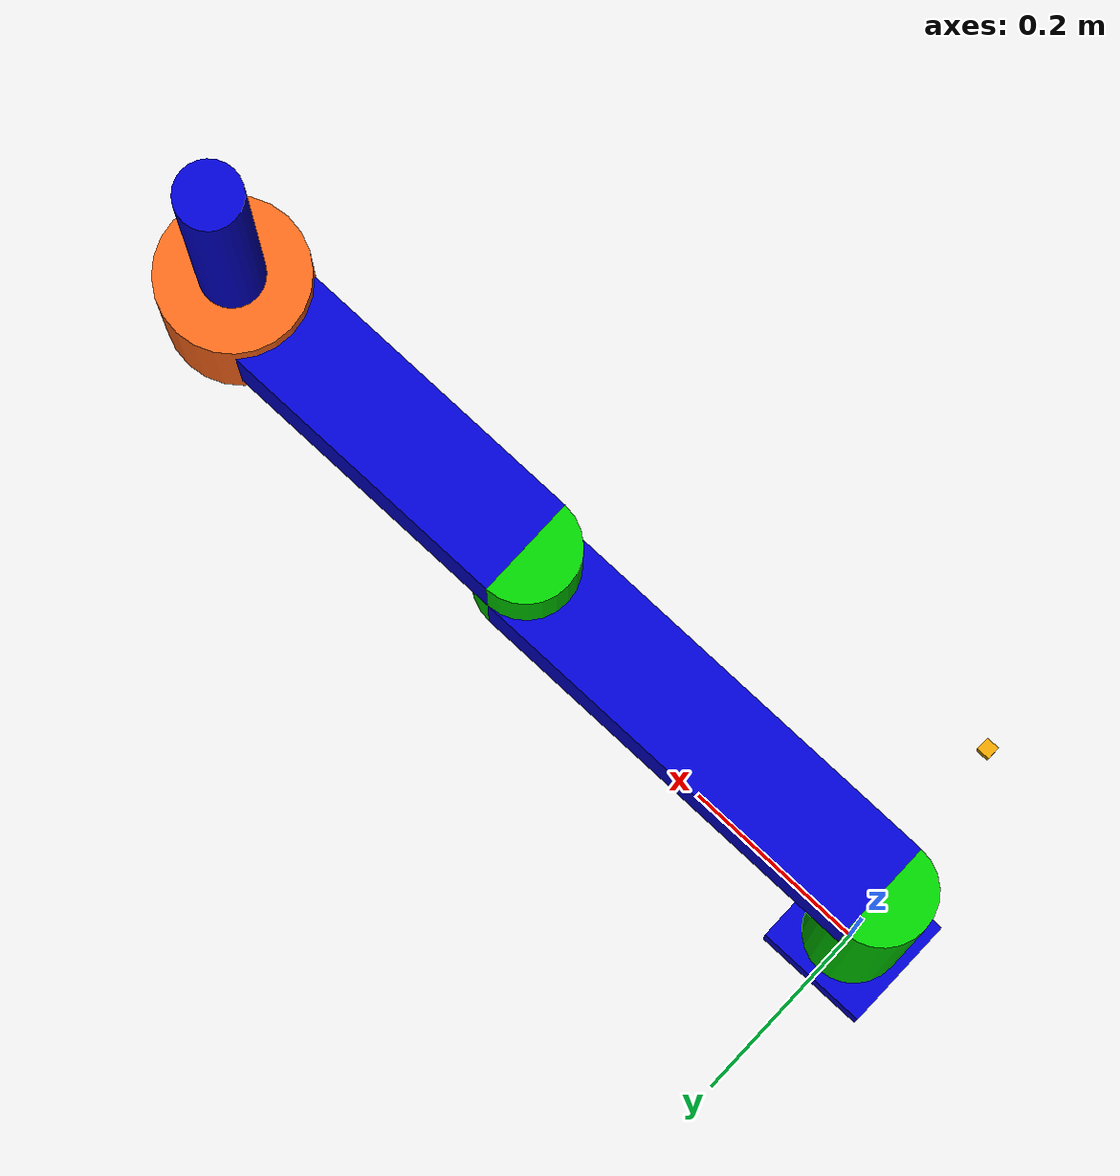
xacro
<?xml version = "1.0"?>
<robot name = "scara" xmlns:xacro="http://www.ros.org/wiki/xacro">

  <!-- Robot arm dimension -->
  <xacro:property name="PI" value="3.1415926535897931"/>

  <material name="black">
    <color rgba="0.0 0.0 0.0 1.0"/>
  </material>

  <material name="blue">
    <color rgba="0.0 0.0 0.8 1.0"/>
  </material>

  <material name="green">
    <color rgba="0.0 0.8 0.0 1.0"/>
  </material>

  <material name="orange">
    <color rgba="1 0.4 0.1 1.0"/>
  </material>

  <material name="brown">
    <color rgba="1 0.87 0.84 1.0"/>
  </material>

  <material name="grey">
    <color rgba="0.2 0.2 0.2 1.0"/>
  </material>

  <material name="red">
    <color rgba="0.8 0.0 0.0 1.0"/>
  </material>

  <material name="white">
    <color rgba="1.0 1.0 1.0 1.0"/>
  </material>

  <!-- For gazebo colors -->
  <gazebo reference="base_link">
    <material>Gazebo/Black</material>
  </gazebo>
  <gazebo reference="revolute1">
    <material>Gazebo/Red</material>
  </gazebo>
  <gazebo reference="link1">
    <material>Gazebo/Black</material>
  </gazebo>
  <gazebo reference="revolute2">
    <material>Gazebo/Red</material>
  </gazebo>
  <gazebo reference="link2">
    <material>Gazebo/Black</material>
  </gazebo>
  <gazebo reference="prismatic3">
    <material>Gazebo/Blue</material>
  </gazebo>
  <gazebo reference="link3">
    <material>Gazebo/Black</material>
  </gazebo>

  <!-- Used for fixing robot to Gazebo 'base_link' -->
  <link name="world"/>

  <!-- Base Link -->
  <link name = "base_link">
    <visual>
      <geometry>
        <box size = "0.12 0.12 0.05"/>
      </geometry>
      <material name = "blue"/>
      <origin xyz = "0 0 0.025"/>
    </visual>
    <inertial>
      <mass value="1" />
      <origin xyz="0 0 0.0" rpy="0 0 0" />
      <inertia ixx="0.001" ixy="0" ixz="0" iyy="0.001" iyz="0" izz="0.001" />
    </inertial>
    <collision>
      <geometry>
        <box size = "0.12 0.12 0.05"/>
      </geometry>
      <material name = "blue"/>
      <origin xyz = "0 0 0.025"/>
    </collision>
  </link>

  <joint name="base2world" type="fixed">
    <parent link="world"/>
    <child link="base_link"/>
  </joint>

  <!-- revolute1 1 -->
  <link name = "revolute1">
    <visual>
      <geometry>
        <cylinder length = "0.45" radius = "0.05"/>
      </geometry>
      <material name = "green"/>
      <origin xyz = "0 0 0.225"/>
    </visual>
    <inertial>
      <mass value="0.5" />
      <origin xyz="0 0 0.0" rpy="0 0 0" />
      <inertia ixx="0.001" ixy="0" ixz="0" iyy="0.001" iyz="0" izz="0.001" />
    </inertial>
    <collision>
      <geometry>
        <cylinder length = "0.45" radius = "0.05"/>
      </geometry>
      <material name = "green"/>
      <origin xyz = "0 0 0.225"/>
    </collision>
  </link>

  <joint name = "joint1" type="continuous">
    <parent link = "base_link"/>
    <child link = "revolute1"/>
    <origin xyz = "0 0 0.05"/>
    <limit effort="1000.0" lower="-1.57" upper="1.57" velocity="0.5"/>
    <axis xyz = "0 0 1"/>
    <dynamics damping="0.2" friction="0.1" />
  </joint>

  <!-- link 1 -->
  <link name = "link1">
    <visual>
      <geometry>
        <box size = "0.1 0.1 0.425"/>
      </geometry>
      <material name = "blue"/>
      <origin rpy = "0 1.571 0" xyz = "0.2125 0 0"/>
    </visual>
    <inertial>
      <mass value="0.5" />
      <origin xyz="0 0 0.0" rpy="0 0 0" />
      <inertia ixx="0.001" ixy="0" ixz="0" iyy="0.001" iyz="0" izz="0.001" />
    </inertial>
    <collision>
      <geometry>
        <box size = "0.1 0.1 0.425"/>
      </geometry>
      <material name = "blue"/>
      <origin rpy = "0 1.571 0" xyz = "0.2125 0 0"/>
    </collision>
  </link>

  <joint name = "link12revolute1" type="fixed">
    <parent link = "revolute1"/>
    <child link = "link1"/>
    <origin xyz = "0 0 0.4"/>
  </joint>

  <!-- revolute 2 -->
  <link name = "revolute2">
    <visual>
      <geometry>
        <cylinder length = "0.2" radius = "0.05"/>
      </geometry>
      <material name = "green"/>
      <origin rpy = "0 0 0" xyz = "0 0 0"/>
    </visual>
    <inertial>
      <mass value="0.5" />
      <origin xyz="0 0 0.0" rpy="0 0 0" />
      <inertia ixx="0.001" ixy="0" ixz="0" iyy="0.001" iyz="0" izz="0.001" />
    </inertial>
    <collision>
      <geometry>
        <cylinder length = "0.2" radius = "0.05"/>
      </geometry>
      <material name = "green"/>
      <origin rpy = "0 0 0" xyz = "0 0 0"/>
    </collision>
  </link>

  <joint name = "joint2" type="continuous">
    <parent link = "link1"/>
    <child link = "revolute2"/>
    <origin xyz = "0.425 0 0.05"/>
    <limit effort="1000.0" lower="-1.57" upper="1.57" velocity="0.5"/>
    <axis xyz = "0 0 1"/>
    <dynamics damping="0.2" friction="0.1" />
  </joint>

  <!-- link 2 -->
  <link name = "link2">
    <visual>
      <geometry>
        <box size = "0.1 0.1 0.345"/>
      </geometry>
      <material name = "blue"/>
      <origin rpy = "0 1.571 0" xyz = "0.1725 0 0"/>
    </visual>
    <inertial>
      <mass value="0.5" />
      <origin xyz="0 0 0.0" rpy="0 0 0" />
      <inertia ixx="0.001" ixy="0" ixz="0" iyy="0.001" iyz="0" izz="0.001" />
    </inertial>
    <collision>
      <geometry>
        <box size = "0.1 0.1 0.345"/>
      </geometry>
      <material name = "blue"/>
      <origin rpy = "0 1.571 0" xyz = "0.1725 0 0"/>
    </collision>
  </link>

  <joint name = "link22revolute2" type="fixed">
    <parent link = "revolute2"/>
    <child link = "link2"/>
    <origin xyz = "0 0 0.05"/>
  </joint>

  <!-- prismatic 3 -->
  <link name = "prismatic3">
    <visual>
      <geometry>
        <cylinder length = "0.15" radius = "0.07"/>
      </geometry>
      <material name = "orange"/>
      <origin xyz = "0 0 0"/>
    </visual>
    <inertial>
      <mass value="0.5" />
      <origin xyz="0 0 0.0" rpy="0 0 0" />
      <inertia ixx="0.001" ixy="0" ixz="0" iyy="0.001" iyz="0" izz="0.001" />
    </inertial>
    <collision>
      <geometry>
        <cylinder length = "0.15" radius = "0.07"/>
      </geometry>
      <material name = "orange"/>
      <origin xyz = "0 0 0"/>
    </collision>
  </link>

  <joint name = "prismatic32link2" type="fixed">
    <parent link = "link2"/>
    <child link = "prismatic3"/>
    <origin rpy = "3.14 0 0" xyz = "0.345 0 0"/>
  </joint>

  <!-- link 3 -->
  <link name = "link3">
    <visual>
      <geometry>
        <cylinder length = "0.5" radius = "0.03"/>
      </geometry>
      <material name = "blue"/>
      <origin xyz = "0 0 -0.25"/>
    </visual>
    <inertial>
      <mass value="0.2" />
      <origin xyz="0 0 0.0" rpy="0 0 0" />
      <inertia ixx="0.001" ixy="0" ixz="0" iyy="0.001" iyz="0" izz="0.001" />
    </inertial>
    <collision>
      <geometry>
        <cylinder length = "0.5" radius = "0.03"/>
      </geometry>
      <material name = "blue"/>
      <origin xyz = "0 0 -0.25"/>
    </collision>
  </link>

  <joint name = "joint3" type="prismatic">
    <parent link = "prismatic3"/>
    <child link = "link3"/>
    <origin xyz = "0 0 0.11"/>
    <limit effort="1000" lower="-0.00001" upper="0.3" velocity="0.1"/>
    <axis xyz = "0 0 1"/>
    <dynamics damping="0.4" friction="5" />
  </joint>

  <!-- Controller -->
  <transmission name="tran1">
    <type>transmission_interface/SimpleTransmission</type>
    <joint name="joint1">
      <hardwareInterface>hardware_interface/PositionJointInterface</hardwareInterface>
    </joint>
    <actuator name="motor1">
      <hardwareInterface>hardware_interface/PositionJointInterface</hardwareInterface>
      <mechanicalReduction>1</mechanicalReduction>
    </actuator>
  </transmission>

  <transmission name="tran2">
    <type>transmission_interface/SimpleTransmission</type>
    <joint name="joint2">
      <hardwareInterface>hardware_interface/PositionJointInterface</hardwareInterface>
    </joint>
    <actuator name="motor2">
      <hardwareInterface>hardware_interface/PositionJointInterface</hardwareInterface>
      <mechanicalReduction>1</mechanicalReduction>
    </actuator>
  </transmission>

  <transmission name="tran3">
    <type>transmission_interface/SimpleTransmission</type>
    <joint name="joint3">
      <hardwareInterface>hardware_interface/PositionJointInterface</hardwareInterface>
    </joint>
    <actuator name="motor3">
      <hardwareInterface>hardware_interface/PositionJointInterface</hardwareInterface>
      <mechanicalReduction>1</mechanicalReduction>
    </actuator>
  </transmission>

  <joint name="camera_joint" type="fixed">
    <axis xyz="0 1 0" />
    <origin xyz="0 0 1.6" rpy="0 1.570796327 0"/>
    <parent link="world"/>
    <child link="camera_link"/>
  </joint>

  <!-- Camera -->
  <link name="camera_link">
        <visual>
      <origin xyz="0.0 0.0 0" rpy="0 0 0"/>
      <geometry>
        <box size="0.01 0.01 0.01"/>
      </geometry>
    </visual>

    <inertial>
      <mass value="1e-5" />
      <origin xyz="0 0 0" rpy="0 0 0"/>
      <inertia ixx="1e-6" ixy="0" ixz="0" iyy="1e-6" iyz="0" izz="1e-6" />
    </inertial>
  </link>

     <!-- camera -->
  <gazebo reference="camera_link">
    <sensor type="camera" name="camera">
      <update_rate>30.0</update_rate>
      <camera name="head">
        <horizontal_fov>1.3962634</horizontal_fov>
        <image>
          <width>800</width>
          <height>800</height>
          <format>R8G8B8</format>
        </image>
        <clip>
          <near>0.02</near>
          <far>300</far>
        </clip>
        <noise>
          <type>gaussian</type>
          <!-- Noise is sampled independently per pixel on each frame.
               That pixel's noise value is added to each of its color
               channels, which at that point lie in the range [0,1]. -->
          <mean>0.0</mean>
          <stddev>0.007</stddev>
        </noise>
      </camera>
      <plugin name="camera_controller" filename="libgazebo_ros_camera.so">
        <alwaysOn>true</alwaysOn>
        <updateRate>0.0</updateRate>
        <cameraName>camera</cameraName>
        <imageTopicName>image_raw</imageTopicName>
        <cameraInfoTopicName>camera_info</cameraInfoTopicName>
        <frameName>camera_link</frameName>
        <hackBaseline>0.07</hackBaseline>
        <distortionK1>0.0</distortionK1>
        <distortionK2>0.0</distortionK2>
        <distortionK3>0.0</distortionK3>
        <distortionT1>0.0</distortionT1>
        <distortionT2>0.0</distortionT2>
      </plugin>
    </sensor>
  </gazebo>

  <gazebo>
    <plugin name="control" filename="libgazebo_ros_control.so"/>
  </gazebo>

</robot>
